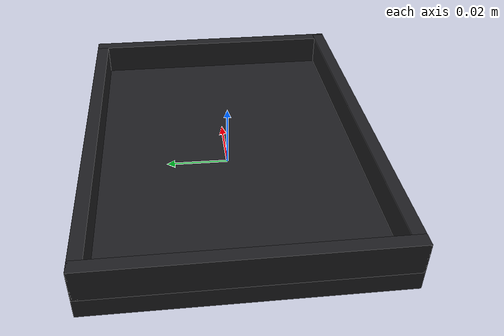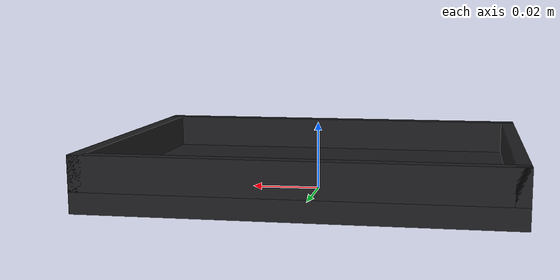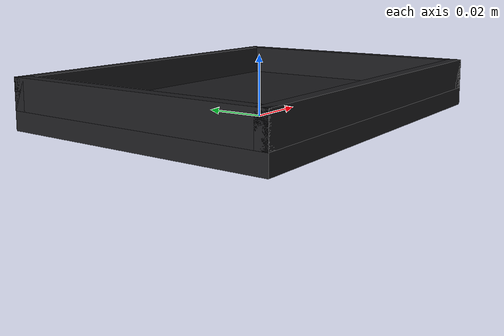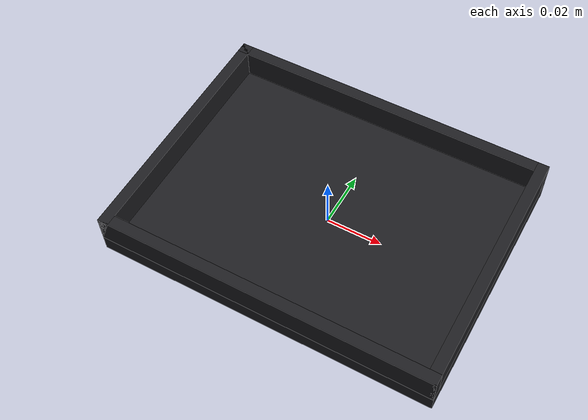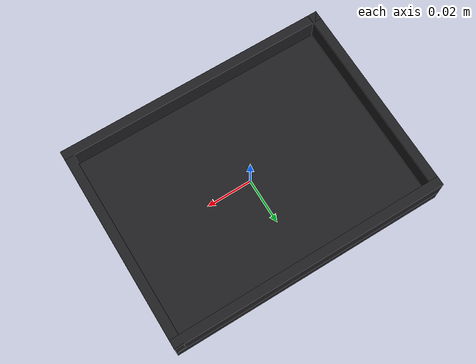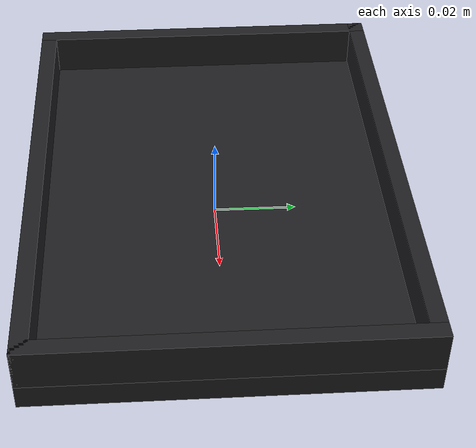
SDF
<?xml version="1.0"?>
<!--
  Assembly fixture (peghole workcell only): a shallow rimmed platform that
  holds the base plate. Static. Origin at the bottom face centre.
-->
<sdf version="1.9">
  <model name="assembly_fixture">
    <static>true</static>
    <link name="assembly_fixture_link">
      <inertial>
        <mass>0.1</mass>
        <inertia>
          <ixx>1e-4</ixx>
          <iyy>1e-4</iyy>
          <izz>1e-4</izz>
          <ixy>0</ixy>
          <ixz>0</ixz>
          <iyz>0</iyz>
        </inertia>
      </inertial>

      <!-- floor -->
      <visual name="floor_visual">
        <pose>0 0 0.003 0 0 0</pose>
        <geometry><box><size>0.12 0.09 0.006</size></box></geometry>
        <material>
          <ambient>0.12 0.12 0.13 1.0</ambient>
          <diffuse>0.12 0.12 0.13 1.0</diffuse>
        </material>
      </visual>
      <collision name="floor_collision">
        <pose>0 0 0.003 0 0 0</pose>
        <geometry><box><size>0.12 0.09 0.006</size></box></geometry>
      </collision>

      <!-- +x rim wall -->
      <visual name="wall_px_visual">
        <pose>0.058 0 0.011 0 0 0</pose>
        <geometry><box><size>0.004 0.09 0.01</size></box></geometry>
        <material>
          <ambient>0.12 0.12 0.13 1.0</ambient>
          <diffuse>0.12 0.12 0.13 1.0</diffuse>
        </material>
      </visual>
      <collision name="wall_px_collision">
        <pose>0.058 0 0.011 0 0 0</pose>
        <geometry><box><size>0.004 0.09 0.01</size></box></geometry>
      </collision>

      <!-- -x rim wall -->
      <visual name="wall_nx_visual">
        <pose>-0.058 0 0.011 0 0 0</pose>
        <geometry><box><size>0.004 0.09 0.01</size></box></geometry>
        <material>
          <ambient>0.12 0.12 0.13 1.0</ambient>
          <diffuse>0.12 0.12 0.13 1.0</diffuse>
        </material>
      </visual>
      <collision name="wall_nx_collision">
        <pose>-0.058 0 0.011 0 0 0</pose>
        <geometry><box><size>0.004 0.09 0.01</size></box></geometry>
      </collision>

      <!-- +y rim wall -->
      <visual name="wall_py_visual">
        <pose>0 0.043 0.011 0 0 0</pose>
        <geometry><box><size>0.12 0.004 0.01</size></box></geometry>
        <material>
          <ambient>0.12 0.12 0.13 1.0</ambient>
          <diffuse>0.12 0.12 0.13 1.0</diffuse>
        </material>
      </visual>
      <collision name="wall_py_collision">
        <pose>0 0.043 0.011 0 0 0</pose>
        <geometry><box><size>0.12 0.004 0.01</size></box></geometry>
      </collision>

      <!-- -y rim wall -->
      <visual name="wall_ny_visual">
        <pose>0 -0.043 0.011 0 0 0</pose>
        <geometry><box><size>0.12 0.004 0.01</size></box></geometry>
        <material>
          <ambient>0.12 0.12 0.13 1.0</ambient>
          <diffuse>0.12 0.12 0.13 1.0</diffuse>
        </material>
      </visual>
      <collision name="wall_ny_collision">
        <pose>0 -0.043 0.011 0 0 0</pose>
        <geometry><box><size>0.12 0.004 0.01</size></box></geometry>
      </collision>
    </link>
  </model>
</sdf>
